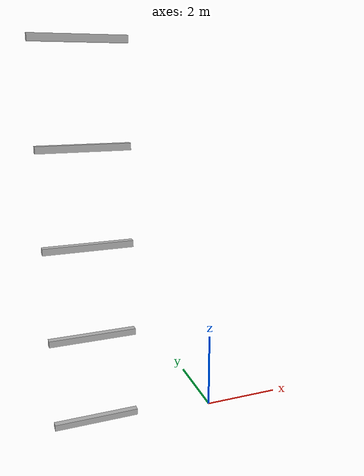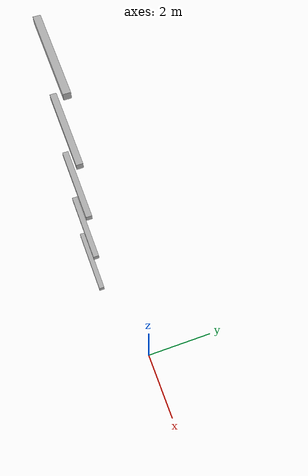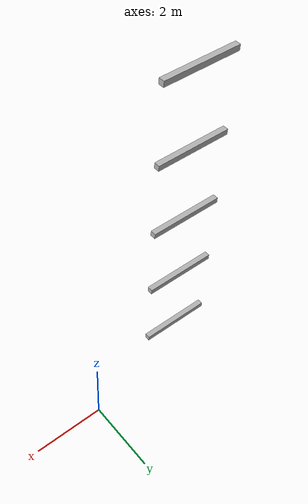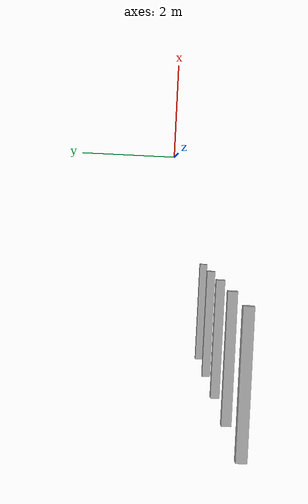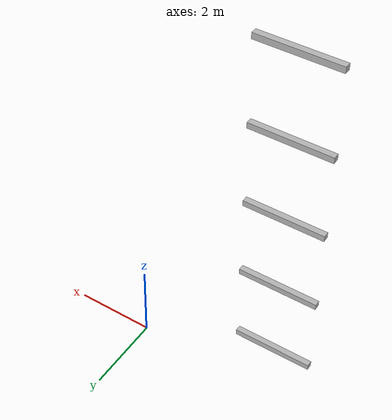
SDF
<sdf version="1.7">
 <world name="default">
  <model name="orthogonal_747_2.000.15_TS">
   <static>1</static>
   <link name="x_link_1_2_1">
    <inertial>
     <mass>1</mass>
     <inertia>
      <ixx>0.166667</ixx>
      <ixy>0</ixy>
      <ixz>0</ixz>
      <iyy>0.166667</iyy>
      <iyz>0</iyz>
      <izz>0.166667</izz>
     </inertia>
    </inertial>
    <pose>3.225 4.3 3.225 0 -0 0</pose>
    <visual name="visual_0">
     <laser_retro>1170</laser_retro>
     <geometry><box><size>2 1e-06 0.15</size></box></geometry>
     <material>
      <script><name>Gazebo/Grey</name><uri>file://media/materials/scripts/gazebo.material</uri></script>
      <shader type="pixel"><normal_map>__default__</normal_map></shader>
      <ambient>0.678 0.498 0.659 1</ambient>
      <diffuse>0.7 0.7 0.7 1</diffuse>
      <specular>0.01 0.01 0.01 1</specular>
      <emissive>0 0 0 1</emissive>
     </material>
     <pose>0 -0.075 0 0 -0 0</pose>
     <transparency>1</transparency>
    </visual>
    <visual name="visual_1">
     <laser_retro>1171</laser_retro>
     <geometry><box><size>2 1e-06 0.15</size></box></geometry>
     <material>
      <script><name>Gazebo/Grey</name><uri>file://media/materials/scripts/gazebo.material</uri></script>
      <shader type="pixel"><normal_map>__default__</normal_map></shader>
      <ambient>0.447 0.624 0.812 1</ambient>
      <diffuse>0.7 0.7 0.7 1</diffuse>
      <specular>0.01 0.01 0.01 1</specular>
      <emissive>0 0 0 1</emissive>
     </material>
     <pose>0 0.075 0 0 -0 0</pose>
     <transparency>1</transparency>
    </visual>
    <visual name="visual_2">
     <laser_retro>1172</laser_retro>
     <geometry><box><size>2 0.15 1e-06</size></box></geometry>
     <material>
      <script><name>Gazebo/Grey</name><uri>file://media/materials/scripts/gazebo.material</uri></script>
      <shader type="pixel"><normal_map>__default__</normal_map></shader>
      <ambient>0.988 0.686 0.243 1</ambient>
      <diffuse>0.7 0.7 0.7 1</diffuse>
      <specular>0.01 0.01 0.01 1</specular>
      <emissive>0 0 0 1</emissive>
     </material>
     <pose>0 0 -0.075 0 -0 0</pose>
     <transparency>1</transparency>
    </visual>
    <visual name="visual_3">
     <laser_retro>1173</laser_retro>
     <geometry><box><size>1e-06 0.15 0.15</size></box></geometry>
     <material>
      <script><name>Gazebo/Grey</name><uri>file://media/materials/scripts/gazebo.material</uri></script>
      <shader type="pixel"><normal_map>__default__</normal_map></shader>
      <ambient>0.988 0.914 0.31 1</ambient>
      <diffuse>0.7 0.7 0.7 1</diffuse>
      <specular>0.01 0.01 0.01 1</specular>
      <emissive>0 0 0 1</emissive>
     </material>
     <pose>1 0 0 0 -0 0</pose>
     <transparency>1</transparency>
    </visual>
    <visual name="visual_4">
     <laser_retro>1174</laser_retro>
     <geometry><box><size>2 0.15 1e-06</size></box></geometry>
     <material>
      <script><name>Gazebo/Grey</name><uri>file://media/materials/scripts/gazebo.material</uri></script>
      <shader type="pixel"><normal_map>__default__</normal_map></shader>
      <ambient>0.937 0.161 0.161 1</ambient>
      <diffuse>0.7 0.7 0.7 1</diffuse>
      <specular>0.01 0.01 0.01 1</specular>
      <emissive>0 0 0 1</emissive>
     </material>
     <pose>0 0 0.075 0 -0 0</pose>
     <transparency>1</transparency>
    </visual>
    <visual name="visual_5">
     <laser_retro>1175</laser_retro>
     <geometry><box><size>1e-06 0.15 0.15</size></box></geometry>
     <material>
      <script><name>Gazebo/Grey</name><uri>file://media/materials/scripts/gazebo.material</uri></script>
      <shader type="pixel"><normal_map>__default__</normal_map></shader>
      <ambient>0.541 0.886 0.204 1</ambient>
      <diffuse>0.7 0.7 0.7 1</diffuse>
      <specular>0.01 0.01 0.01 1</specular>
      <emissive>0 0 0 1</emissive>
     </material>
     <pose>-1 0 0 0 -0 0</pose>
     <transparency>1</transparency>
    </visual>
    <visual name="visual_texture">
     <geometry><box><size>1.9998 0.149985 0.149985</size></box></geometry>
     <material>
      <script>
       <uri>model://BASE_MODELS/simple_block_v2_textured/materials/scripts</uri>
       <uri>model://BASE_MODELS/simple_block_v2_textured/materials/textures</uri>
       <name>metal</name>
      </script>
     </material>
     <laser_retro>1176</laser_retro>
    </visual>
    <collision name="collision">
     <geometry><box><size>2 0.15 0.15</size></box></geometry>
     <surface>
      <friction>
       <ode><mu>1</mu><mu2>1</mu2><fdir1>0 0 0</fdir1><slip1>0</slip1><slip2>0</slip2></ode>
       <torsional>
        <coefficient>1</coefficient>
        <patch_radius>0</patch_radius>
        <surface_radius>0</surface_radius>
        <use_patch_radius>1</use_patch_radius>
        <ode><slip>0</slip></ode>
       </torsional>
      </friction>
      <bounce><restitution_coefficient>0</restitution_coefficient><threshold>1e+06</threshold></bounce>
      <contact>
       <collide_without_contact>0</collide_without_contact>
       <collide_without_contact_bitmask>1</collide_without_contact_bitmask>
       <collide_bitmask>1</collide_bitmask>
       <ode>
        <soft_cfm>0</soft_cfm>
        <soft_erp>0.2</soft_erp>
        <kp>1e+13</kp>
        <kd>1</kd>
        <max_vel>0.01</max_vel>
        <min_depth>0</min_depth>
       </ode>
       <bullet>
        <split_impulse>1</split_impulse>
        <split_impulse_penetration_threshold>-0.01</split_impulse_penetration_threshold>
        <soft_cfm>0</soft_cfm>
        <soft_erp>0.2</soft_erp>
        <kp>1e+13</kp>
        <kd>1</kd>
       </bullet>
      </contact>
     </surface>
    </collision>
   </link>
   <link name="x_link_2_2_1">
    <inertial>
     <mass>1</mass>
     <inertia>
      <ixx>0.166667</ixx>
      <ixy>0</ixy>
      <ixz>0</ixz>
      <iyy>0.166667</iyy>
      <iyz>0</iyz>
      <izz>0.166667</izz>
     </inertia>
    </inertial>
    <pose>3.225 4.3 5.375 0 -0 0</pose>
    <visual name="visual_0">
     <laser_retro>2073</laser_retro>
     <geometry><box><size>2 1e-06 0.15</size></box></geometry>
     <material>
      <script><name>Gazebo/Grey</name><uri>file://media/materials/scripts/gazebo.material</uri></script>
      <shader type="pixel"><normal_map>__default__</normal_map></shader>
      <ambient>0.678 0.498 0.659 1</ambient>
      <diffuse>0.7 0.7 0.7 1</diffuse>
      <specular>0.01 0.01 0.01 1</specular>
      <emissive>0 0 0 1</emissive>
     </material>
     <pose>0 -0.075 0 0 -0 0</pose>
     <transparency>1</transparency>
    </visual>
    <visual name="visual_1">
     <laser_retro>2074</laser_retro>
     <geometry><box><size>2 1e-06 0.15</size></box></geometry>
     <material>
      <script><name>Gazebo/Grey</name><uri>file://media/materials/scripts/gazebo.material</uri></script>
      <shader type="pixel"><normal_map>__default__</normal_map></shader>
      <ambient>0.447 0.624 0.812 1</ambient>
      <diffuse>0.7 0.7 0.7 1</diffuse>
      <specular>0.01 0.01 0.01 1</specular>
      <emissive>0 0 0 1</emissive>
     </material>
     <pose>0 0.075 0 0 -0 0</pose>
     <transparency>1</transparency>
    </visual>
    <visual name="visual_2">
     <laser_retro>2075</laser_retro>
     <geometry><box><size>2 0.15 1e-06</size></box></geometry>
     <material>
      <script><name>Gazebo/Grey</name><uri>file://media/materials/scripts/gazebo.material</uri></script>
      <shader type="pixel"><normal_map>__default__</normal_map></shader>
      <ambient>0.988 0.686 0.243 1</ambient>
      <diffuse>0.7 0.7 0.7 1</diffuse>
      <specular>0.01 0.01 0.01 1</specular>
      <emissive>0 0 0 1</emissive>
     </material>
     <pose>0 0 -0.075 0 -0 0</pose>
     <transparency>1</transparency>
    </visual>
    <visual name="visual_3">
     <laser_retro>2076</laser_retro>
     <geometry><box><size>1e-06 0.15 0.15</size></box></geometry>
     <material>
      <script><name>Gazebo/Grey</name><uri>file://media/materials/scripts/gazebo.material</uri></script>
      <shader type="pixel"><normal_map>__default__</normal_map></shader>
      <ambient>0.988 0.914 0.31 1</ambient>
      <diffuse>0.7 0.7 0.7 1</diffuse>
      <specular>0.01 0.01 0.01 1</specular>
      <emissive>0 0 0 1</emissive>
     </material>
     <pose>1 0 0 0 -0 0</pose>
     <transparency>1</transparency>
    </visual>
    <visual name="visual_4">
     <laser_retro>2077</laser_retro>
     <geometry><box><size>2 0.15 1e-06</size></box></geometry>
     <material>
      <script><name>Gazebo/Grey</name><uri>file://media/materials/scripts/gazebo.material</uri></script>
      <shader type="pixel"><normal_map>__default__</normal_map></shader>
      <ambient>0.937 0.161 0.161 1</ambient>
      <diffuse>0.7 0.7 0.7 1</diffuse>
      <specular>0.01 0.01 0.01 1</specular>
      <emissive>0 0 0 1</emissive>
     </material>
     <pose>0 0 0.075 0 -0 0</pose>
     <transparency>1</transparency>
    </visual>
    <visual name="visual_5">
     <laser_retro>2078</laser_retro>
     <geometry><box><size>1e-06 0.15 0.15</size></box></geometry>
     <material>
      <script><name>Gazebo/Grey</name><uri>file://media/materials/scripts/gazebo.material</uri></script>
      <shader type="pixel"><normal_map>__default__</normal_map></shader>
      <ambient>0.541 0.886 0.204 1</ambient>
      <diffuse>0.7 0.7 0.7 1</diffuse>
      <specular>0.01 0.01 0.01 1</specular>
      <emissive>0 0 0 1</emissive>
     </material>
     <pose>-1 0 0 0 -0 0</pose>
     <transparency>1</transparency>
    </visual>
    <visual name="visual_texture">
     <geometry><box><size>1.9998 0.149985 0.149985</size></box></geometry>
     <material>
      <script>
       <uri>model://BASE_MODELS/simple_block_v2_textured/materials/scripts</uri>
       <uri>model://BASE_MODELS/simple_block_v2_textured/materials/textures</uri>
       <name>metal</name>
      </script>
     </material>
     <laser_retro>2079</laser_retro>
    </visual>
    <collision name="collision">
     <geometry><box><size>2 0.15 0.15</size></box></geometry>
     <surface>
      <friction>
       <ode><mu>1</mu><mu2>1</mu2><fdir1>0 0 0</fdir1><slip1>0</slip1><slip2>0</slip2></ode>
       <torsional>
        <coefficient>1</coefficient>
        <patch_radius>0</patch_radius>
        <surface_radius>0</surface_radius>
        <use_patch_radius>1</use_patch_radius>
        <ode><slip>0</slip></ode>
       </torsional>
      </friction>
      <bounce><restitution_coefficient>0</restitution_coefficient><threshold>1e+06</threshold></bounce>
      <contact>
       <collide_without_contact>0</collide_without_contact>
       <collide_without_contact_bitmask>1</collide_without_contact_bitmask>
       <collide_bitmask>1</collide_bitmask>
       <ode>
        <soft_cfm>0</soft_cfm>
        <soft_erp>0.2</soft_erp>
        <kp>1e+13</kp>
        <kd>1</kd>
        <max_vel>0.01</max_vel>
        <min_depth>0</min_depth>
       </ode>
       <bullet>
        <split_impulse>1</split_impulse>
        <split_impulse_penetration_threshold>-0.01</split_impulse_penetration_threshold>
        <soft_cfm>0</soft_cfm>
        <soft_erp>0.2</soft_erp>
        <kp>1e+13</kp>
        <kd>1</kd>
       </bullet>
      </contact>
     </surface>
    </collision>
   </link>
   <link name="x_link_3_2_1">
    <inertial>
     <mass>1</mass>
     <inertia>
      <ixx>0.166667</ixx>
      <ixy>0</ixy>
      <ixz>0</ixz>
      <iyy>0.166667</iyy>
      <iyz>0</iyz>
      <izz>0.166667</izz>
     </inertia>
    </inertial>
    <pose>3.225 4.3 7.525 0 -0 0</pose>
    <visual name="visual_0">
     <laser_retro>2976</laser_retro>
     <geometry><box><size>2 1e-06 0.15</size></box></geometry>
     <material>
      <script><name>Gazebo/Grey</name><uri>file://media/materials/scripts/gazebo.material</uri></script>
      <shader type="pixel"><normal_map>__default__</normal_map></shader>
      <ambient>0.678 0.498 0.659 1</ambient>
      <diffuse>0.7 0.7 0.7 1</diffuse>
      <specular>0.01 0.01 0.01 1</specular>
      <emissive>0 0 0 1</emissive>
     </material>
     <pose>0 -0.075 0 0 -0 0</pose>
     <transparency>1</transparency>
    </visual>
    <visual name="visual_1">
     <laser_retro>2977</laser_retro>
     <geometry><box><size>2 1e-06 0.15</size></box></geometry>
     <material>
      <script><name>Gazebo/Grey</name><uri>file://media/materials/scripts/gazebo.material</uri></script>
      <shader type="pixel"><normal_map>__default__</normal_map></shader>
      <ambient>0.447 0.624 0.812 1</ambient>
      <diffuse>0.7 0.7 0.7 1</diffuse>
      <specular>0.01 0.01 0.01 1</specular>
      <emissive>0 0 0 1</emissive>
     </material>
     <pose>0 0.075 0 0 -0 0</pose>
     <transparency>1</transparency>
    </visual>
    <visual name="visual_2">
     <laser_retro>2978</laser_retro>
     <geometry><box><size>2 0.15 1e-06</size></box></geometry>
     <material>
      <script><name>Gazebo/Grey</name><uri>file://media/materials/scripts/gazebo.material</uri></script>
      <shader type="pixel"><normal_map>__default__</normal_map></shader>
      <ambient>0.988 0.686 0.243 1</ambient>
      <diffuse>0.7 0.7 0.7 1</diffuse>
      <specular>0.01 0.01 0.01 1</specular>
      <emissive>0 0 0 1</emissive>
     </material>
     <pose>0 0 -0.075 0 -0 0</pose>
     <transparency>1</transparency>
    </visual>
    <visual name="visual_3">
     <laser_retro>2979</laser_retro>
     <geometry><box><size>1e-06 0.15 0.15</size></box></geometry>
     <material>
      <script><name>Gazebo/Grey</name><uri>file://media/materials/scripts/gazebo.material</uri></script>
      <shader type="pixel"><normal_map>__default__</normal_map></shader>
      <ambient>0.988 0.914 0.31 1</ambient>
      <diffuse>0.7 0.7 0.7 1</diffuse>
      <specular>0.01 0.01 0.01 1</specular>
      <emissive>0 0 0 1</emissive>
     </material>
     <pose>1 0 0 0 -0 0</pose>
     <transparency>1</transparency>
    </visual>
    <visual name="visual_4">
     <laser_retro>2980</laser_retro>
     <geometry><box><size>2 0.15 1e-06</size></box></geometry>
     <material>
      <script><name>Gazebo/Grey</name><uri>file://media/materials/scripts/gazebo.material</uri></script>
      <shader type="pixel"><normal_map>__default__</normal_map></shader>
      <ambient>0.937 0.161 0.161 1</ambient>
      <diffuse>0.7 0.7 0.7 1</diffuse>
      <specular>0.01 0.01 0.01 1</specular>
      <emissive>0 0 0 1</emissive>
     </material>
     <pose>0 0 0.075 0 -0 0</pose>
     <transparency>1</transparency>
    </visual>
    <visual name="visual_5">
     <laser_retro>2981</laser_retro>
     <geometry><box><size>1e-06 0.15 0.15</size></box></geometry>
     <material>
      <script><name>Gazebo/Grey</name><uri>file://media/materials/scripts/gazebo.material</uri></script>
      <shader type="pixel"><normal_map>__default__</normal_map></shader>
      <ambient>0.541 0.886 0.204 1</ambient>
      <diffuse>0.7 0.7 0.7 1</diffuse>
      <specular>0.01 0.01 0.01 1</specular>
      <emissive>0 0 0 1</emissive>
     </material>
     <pose>-1 0 0 0 -0 0</pose>
     <transparency>1</transparency>
    </visual>
    <visual name="visual_texture">
     <geometry><box><size>1.9998 0.149985 0.149985</size></box></geometry>
     <material>
      <script>
       <uri>model://BASE_MODELS/simple_block_v2_textured/materials/scripts</uri>
       <uri>model://BASE_MODELS/simple_block_v2_textured/materials/textures</uri>
       <name>metal</name>
      </script>
     </material>
     <laser_retro>2982</laser_retro>
    </visual>
    <collision name="collision">
     <geometry><box><size>2 0.15 0.15</size></box></geometry>
     <surface>
      <friction>
       <ode><mu>1</mu><mu2>1</mu2><fdir1>0 0 0</fdir1><slip1>0</slip1><slip2>0</slip2></ode>
       <torsional>
        <coefficient>1</coefficient>
        <patch_radius>0</patch_radius>
        <surface_radius>0</surface_radius>
        <use_patch_radius>1</use_patch_radius>
        <ode><slip>0</slip></ode>
       </torsional>
      </friction>
      <bounce><restitution_coefficient>0</restitution_coefficient><threshold>1e+06</threshold></bounce>
      <contact>
       <collide_without_contact>0</collide_without_contact>
       <collide_without_contact_bitmask>1</collide_without_contact_bitmask>
       <collide_bitmask>1</collide_bitmask>
       <ode>
        <soft_cfm>0</soft_cfm>
        <soft_erp>0.2</soft_erp>
        <kp>1e+13</kp>
        <kd>1</kd>
        <max_vel>0.01</max_vel>
        <min_depth>0</min_depth>
       </ode>
       <bullet>
        <split_impulse>1</split_impulse>
        <split_impulse_penetration_threshold>-0.01</split_impulse_penetration_threshold>
        <soft_cfm>0</soft_cfm>
        <soft_erp>0.2</soft_erp>
        <kp>1e+13</kp>
        <kd>1</kd>
       </bullet>
      </contact>
     </surface>
    </collision>
   </link>
   <link name="x_link_4_2_1">
    <inertial>
     <mass>1</mass>
     <inertia>
      <ixx>0.166667</ixx>
      <ixy>0</ixy>
      <ixz>0</ixz>
      <iyy>0.166667</iyy>
      <iyz>0</iyz>
      <izz>0.166667</izz>
     </inertia>
    </inertial>
    <pose>3.225 4.3 9.675 0 -0 0</pose>
    <visual name="visual_0">
     <laser_retro>3879</laser_retro>
     <geometry><box><size>2 1e-06 0.15</size></box></geometry>
     <material>
      <script><name>Gazebo/Grey</name><uri>file://media/materials/scripts/gazebo.material</uri></script>
      <shader type="pixel"><normal_map>__default__</normal_map></shader>
      <ambient>0.678 0.498 0.659 1</ambient>
      <diffuse>0.7 0.7 0.7 1</diffuse>
      <specular>0.01 0.01 0.01 1</specular>
      <emissive>0 0 0 1</emissive>
     </material>
     <pose>0 -0.075 0 0 -0 0</pose>
     <transparency>1</transparency>
    </visual>
    <visual name="visual_1">
     <laser_retro>3880</laser_retro>
     <geometry><box><size>2 1e-06 0.15</size></box></geometry>
     <material>
      <script><name>Gazebo/Grey</name><uri>file://media/materials/scripts/gazebo.material</uri></script>
      <shader type="pixel"><normal_map>__default__</normal_map></shader>
      <ambient>0.447 0.624 0.812 1</ambient>
      <diffuse>0.7 0.7 0.7 1</diffuse>
      <specular>0.01 0.01 0.01 1</specular>
      <emissive>0 0 0 1</emissive>
     </material>
     <pose>0 0.075 0 0 -0 0</pose>
     <transparency>1</transparency>
    </visual>
    <visual name="visual_2">
     <laser_retro>3881</laser_retro>
     <geometry><box><size>2 0.15 1e-06</size></box></geometry>
     <material>
      <script><name>Gazebo/Grey</name><uri>file://media/materials/scripts/gazebo.material</uri></script>
      <shader type="pixel"><normal_map>__default__</normal_map></shader>
      <ambient>0.988 0.686 0.243 1</ambient>
      <diffuse>0.7 0.7 0.7 1</diffuse>
      <specular>0.01 0.01 0.01 1</specular>
      <emissive>0 0 0 1</emissive>
     </material>
     <pose>0 0 -0.075 0 -0 0</pose>
     <transparency>1</transparency>
    </visual>
    <visual name="visual_3">
     <laser_retro>3882</laser_retro>
     <geometry><box><size>1e-06 0.15 0.15</size></box></geometry>
     <material>
      <script><name>Gazebo/Grey</name><uri>file://media/materials/scripts/gazebo.material</uri></script>
      <shader type="pixel"><normal_map>__default__</normal_map></shader>
      <ambient>0.988 0.914 0.31 1</ambient>
      <diffuse>0.7 0.7 0.7 1</diffuse>
      <specular>0.01 0.01 0.01 1</specular>
      <emissive>0 0 0 1</emissive>
     </material>
     <pose>1 0 0 0 -0 0</pose>
     <transparency>1</transparency>
    </visual>
    <visual name="visual_4">
     <laser_retro>3883</laser_retro>
     <geometry><box><size>2 0.15 1e-06</size></box></geometry>
     <material>
      <script><name>Gazebo/Grey</name><uri>file://media/materials/scripts/gazebo.material</uri></script>
      <shader type="pixel"><normal_map>__default__</normal_map></shader>
      <ambient>0.937 0.161 0.161 1</ambient>
      <diffuse>0.7 0.7 0.7 1</diffuse>
      <specular>0.01 0.01 0.01 1</specular>
      <emissive>0 0 0 1</emissive>
     </material>
     <pose>0 0 0.075 0 -0 0</pose>
     <transparency>1</transparency>
    </visual>
    <visual name="visual_5">
     <laser_retro>3884</laser_retro>
     <geometry><box><size>1e-06 0.15 0.15</size></box></geometry>
     <material>
      <script><name>Gazebo/Grey</name><uri>file://media/materials/scripts/gazebo.material</uri></script>
      <shader type="pixel"><normal_map>__default__</normal_map></shader>
      <ambient>0.541 0.886 0.204 1</ambient>
      <diffuse>0.7 0.7 0.7 1</diffuse>
      <specular>0.01 0.01 0.01 1</specular>
      <emissive>0 0 0 1</emissive>
     </material>
     <pose>-1 0 0 0 -0 0</pose>
     <transparency>1</transparency>
    </visual>
    <visual name="visual_texture">
     <geometry><box><size>1.9998 0.149985 0.149985</size></box></geometry>
     <material>
      <script>
       <uri>model://BASE_MODELS/simple_block_v2_textured/materials/scripts</uri>
       <uri>model://BASE_MODELS/simple_block_v2_textured/materials/textures</uri>
       <name>metal</name>
      </script>
     </material>
     <laser_retro>3885</laser_retro>
    </visual>
    <collision name="collision">
     <geometry><box><size>2 0.15 0.15</size></box></geometry>
     <surface>
      <friction>
       <ode><mu>1</mu><mu2>1</mu2><fdir1>0 0 0</fdir1><slip1>0</slip1><slip2>0</slip2></ode>
       <torsional>
        <coefficient>1</coefficient>
        <patch_radius>0</patch_radius>
        <surface_radius>0</surface_radius>
        <use_patch_radius>1</use_patch_radius>
        <ode><slip>0</slip></ode>
       </torsional>
      </friction>
      <bounce><restitution_coefficient>0</restitution_coefficient><threshold>1e+06</threshold></bounce>
      <contact>
       <collide_without_contact>0</collide_without_contact>
       <collide_without_contact_bitmask>1</collide_without_contact_bitmask>
       <collide_bitmask>1</collide_bitmask>
       <ode>
        <soft_cfm>0</soft_cfm>
        <soft_erp>0.2</soft_erp>
        <kp>1e+13</kp>
        <kd>1</kd>
        <max_vel>0.01</max_vel>
        <min_depth>0</min_depth>
       </ode>
       <bullet>
        <split_impulse>1</split_impulse>
        <split_impulse_penetration_threshold>-0.01</split_impulse_penetration_threshold>
        <soft_cfm>0</soft_cfm>
        <soft_erp>0.2</soft_erp>
        <kp>1e+13</kp>
        <kd>1</kd>
       </bullet>
      </contact>
     </surface>
    </collision>
   </link>
   <link name="x_link_5_2_1">
    <inertial>
     <mass>1</mass>
     <inertia>
      <ixx>0.166667</ixx>
      <ixy>0</ixy>
      <ixz>0</ixz>
      <iyy>0.166667</iyy>
      <iyz>0</iyz>
      <izz>0.166667</izz>
     </inertia>
    </inertial>
    <pose>3.225 4.3 11.825 0 -0 0</pose>
    <visual name="visual_0">
     <laser_retro>4782</laser_retro>
     <geometry><box><size>2 1e-06 0.15</size></box></geometry>
     <material>
      <script><name>Gazebo/Grey</name><uri>file://media/materials/scripts/gazebo.material</uri></script>
      <shader type="pixel"><normal_map>__default__</normal_map></shader>
      <ambient>0.678 0.498 0.659 1</ambient>
      <diffuse>0.7 0.7 0.7 1</diffuse>
      <specular>0.01 0.01 0.01 1</specular>
      <emissive>0 0 0 1</emissive>
     </material>
     <pose>0 -0.075 0 0 -0 0</pose>
     <transparency>1</transparency>
    </visual>
    <visual name="visual_1">
     <laser_retro>4783</laser_retro>
     <geometry><box><size>2 1e-06 0.15</size></box></geometry>
     <material>
      <script><name>Gazebo/Grey</name><uri>file://media/materials/scripts/gazebo.material</uri></script>
      <shader type="pixel"><normal_map>__default__</normal_map></shader>
      <ambient>0.447 0.624 0.812 1</ambient>
      <diffuse>0.7 0.7 0.7 1</diffuse>
      <specular>0.01 0.01 0.01 1</specular>
      <emissive>0 0 0 1</emissive>
     </material>
     <pose>0 0.075 0 0 -0 0</pose>
     <transparency>1</transparency>
    </visual>
    <visual name="visual_2">
     <laser_retro>4784</laser_retro>
     <geometry><box><size>2 0.15 1e-06</size></box></geometry>
     <material>
      <script><name>Gazebo/Grey</name><uri>file://media/materials/scripts/gazebo.material</uri></script>
      <shader type="pixel"><normal_map>__default__</normal_map></shader>
      <ambient>0.988 0.686 0.243 1</ambient>
      <diffuse>0.7 0.7 0.7 1</diffuse>
      <specular>0.01 0.01 0.01 1</specular>
      <emissive>0 0 0 1</emissive>
     </material>
     <pose>0 0 -0.075 0 -0 0</pose>
     <transparency>1</transparency>
    </visual>
    <visual name="visual_3">
     <laser_retro>4785</laser_retro>
     <geometry><box><size>1e-06 0.15 0.15</size></box></geometry>
     <material>
      <script><name>Gazebo/Grey</name><uri>file://media/materials/scripts/gazebo.material</uri></script>
      <shader type="pixel"><normal_map>__default__</normal_map></shader>
      <ambient>0.988 0.914 0.31 1</ambient>
      <diffuse>0.7 0.7 0.7 1</diffuse>
      <specular>0.01 0.01 0.01 1</specular>
      <emissive>0 0 0 1</emissive>
     </material>
     <pose>1 0 0 0 -0 0</pose>
     <transparency>1</transparency>
    </visual>
    <visual name="visual_4">
     <laser_retro>4786</laser_retro>
     <geometry><box><size>2 0.15 1e-06</size></box></geometry>
     <material>
      <script><name>Gazebo/Grey</name><uri>file://media/materials/scripts/gazebo.material</uri></script>
      <shader type="pixel"><normal_map>__default__</normal_map></shader>
      <ambient>0.937 0.161 0.161 1</ambient>
      <diffuse>0.7 0.7 0.7 1</diffuse>
      <specular>0.01 0.01 0.01 1</specular>
      <emissive>0 0 0 1</emissive>
     </material>
     <pose>0 0 0.075 0 -0 0</pose>
     <transparency>1</transparency>
    </visual>
    <visual name="visual_5">
     <laser_retro>4787</laser_retro>
     <geometry><box><size>1e-06 0.15 0.15</size></box></geometry>
     <material>
      <script><name>Gazebo/Grey</name><uri>file://media/materials/scripts/gazebo.material</uri></script>
      <shader type="pixel"><normal_map>__default__</normal_map></shader>
      <ambient>0.541 0.886 0.204 1</ambient>
      <diffuse>0.7 0.7 0.7 1</diffuse>
      <specular>0.01 0.01 0.01 1</specular>
      <emissive>0 0 0 1</emissive>
     </material>
     <pose>-1 0 0 0 -0 0</pose>
     <transparency>1</transparency>
    </visual>
    <visual name="visual_texture">
     <geometry><box><size>1.9998 0.149985 0.149985</size></box></geometry>
     <material>
      <script>
       <uri>model://BASE_MODELS/simple_block_v2_textured/materials/scripts</uri>
       <uri>model://BASE_MODELS/simple_block_v2_textured/materials/textures</uri>
       <name>metal</name>
      </script>
     </material>
     <laser_retro>4788</laser_retro>
    </visual>
    <collision name="collision">
     <geometry><box><size>2 0.15 0.15</size></box></geometry>
     <surface>
      <friction>
       <ode><mu>1</mu><mu2>1</mu2><fdir1>0 0 0</fdir1><slip1>0</slip1><slip2>0</slip2></ode>
       <torsional>
        <coefficient>1</coefficient>
        <patch_radius>0</patch_radius>
        <surface_radius>0</surface_radius>
        <use_patch_radius>1</use_patch_radius>
        <ode><slip>0</slip></ode>
       </torsional>
      </friction>
      <bounce><restitution_coefficient>0</restitution_coefficient><threshold>1e+06</threshold></bounce>
      <contact>
       <collide_without_contact>0</collide_without_contact>
       <collide_without_contact_bitmask>1</collide_without_contact_bitmask>
       <collide_bitmask>1</collide_bitmask>
       <ode>
        <soft_cfm>0</soft_cfm>
        <soft_erp>0.2</soft_erp>
        <kp>1e+13</kp>
        <kd>1</kd>
        <max_vel>0.01</max_vel>
        <min_depth>0</min_depth>
       </ode>
       <bullet>
        <split_impulse>1</split_impulse>
        <split_impulse_penetration_threshold>-0.01</split_impulse_penetration_threshold>
        <soft_cfm>0</soft_cfm>
        <soft_erp>0.2</soft_erp>
        <kp>1e+13</kp>
        <kd>1</kd>
       </bullet>
      </contact>
     </surface>
    </collision>
   </link>
   <pose>-6.47624 -5 -2.5 0 -0 0</pose>
  </model>
 </world>
</sdf>
